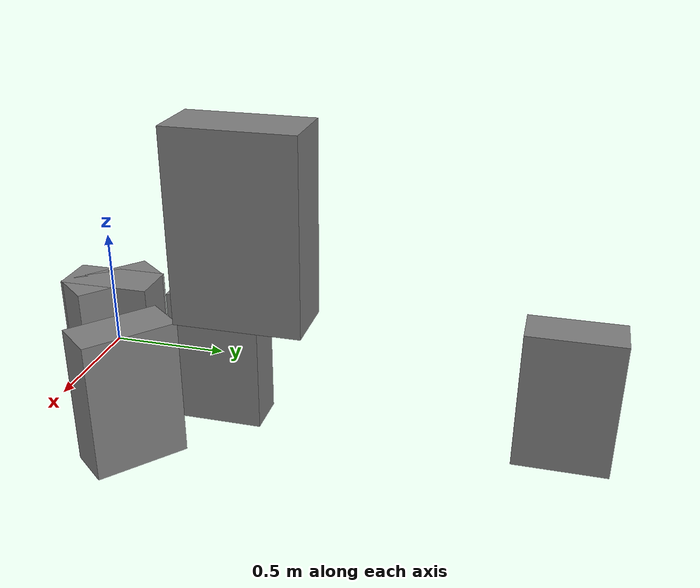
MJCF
<mujoco>
  <default>
    <geom type="box" size=".1 .2 .3"/>
  </default>

  <worldbody>
    <frame euler="0 0 30">
      <geom pos=".5 0 0" euler="0 0 20"/>
    </frame>

    <frame quat="0 1 0 0">
      <geom quat="0 -1 0 0"/>
    </frame>

    <body pos="0 .5 0">
      <frame quat="0 1 0 0">
        <geom/>
      </frame>
    </body>

    <frame euler="0 0 30">
      <frame euler="0 0 20">
        <geom/>
      </frame>
    </frame>

    <body>
      <frame pos="0 1 0">
        <geom pos="0 1 0"/>
        <body pos="1 0 0">
          <geom pos="0 0 1"/>
        </body>
      </frame>
    </body>

    <body>
      <geom/>
      <frame euler="90 0 0">
        <joint type="hinge" axis="0 0 1"/>
      </frame>
    </body>
  </worldbody>
</mujoco>
